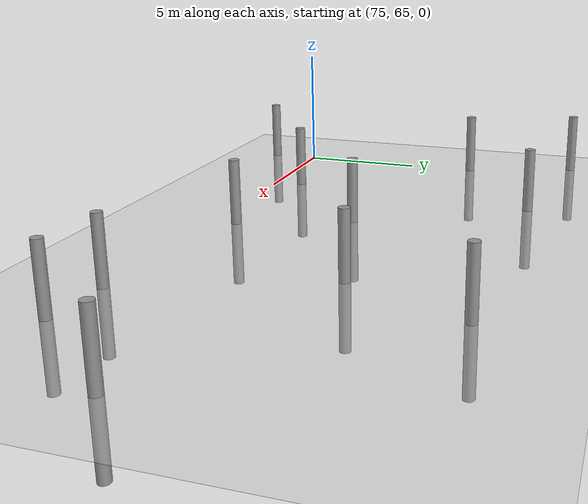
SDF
<sdf version="1.6">
 <world name="default">
  <model name="ground_plane">
   <static>1</static>
   <link name="link">
    <collision name="collision">
     <geometry><plane><normal>0 0 1</normal><size>100 100</size></plane></geometry>
     <surface><friction><ode><mu>100</mu><mu2>50</mu2></ode></friction></surface>
    </collision>
    <visual name="visual">
     <cast_shadows>0</cast_shadows>
     <geometry><plane><normal>0 0 1</normal><size>100 100</size></plane></geometry>
     <material>
      <script><uri>file://media/materials/scripts/gazebo.material</uri><name>Gazebo/Grey</name></script>
     </material>
    </visual>
   </link>
  </model>
  <model name="empty_pillars_2">
   <link name="link">
    <inertial>
     <mass>1</mass>
     <inertia><ixx>0.145833</ixx><ixy>0</ixy><ixz>0</ixz><iyy>0.145833</iyy><iyz>0</iyz><izz>0.125</izz></inertia>
    </inertial>
    <visual name="visual">
     <geometry><cylinder><radius>0.2</radius><length>5</length></cylinder></geometry>
     <material>
      <script><name>Gazebo/Grey</name><uri>file://media/materials/scripts/gazebo.material</uri></script>
      <shader type="vertex"><normal_map>__default__</normal_map></shader>
      <ambient>0.3 0.3 0.3 1</ambient>
      <diffuse>0.7 0.7 0.7 1</diffuse>
      <specular>0.01 0.01 0.01 1</specular>
      <emissive>0 0 0 1</emissive>
     </material>
    </visual>
    <collision name="collision">
     <geometry><cylinder><radius>0.05</radius><length>5</length></cylinder></geometry>
     <surface>
      <friction>
       <ode><mu>1</mu><mu2>1</mu2><fdir1>0 0 0</fdir1><slip1>0</slip1><slip2>0</slip2></ode>
       <torsional>
        <coefficient>1</coefficient>
        <patch_radius>0</patch_radius>
        <surface_radius>0</surface_radius>
        <use_patch_radius>1</use_patch_radius>
        <ode><slip>0</slip></ode>
       </torsional>
      </friction>
      <bounce><restitution_coefficient>0</restitution_coefficient><threshold>1e+06</threshold></bounce>
      <contact>
       <collide_without_contact>0</collide_without_contact>
       <collide_without_contact_bitmask>1</collide_without_contact_bitmask>
       <collide_bitmask>1</collide_bitmask>
       <ode>
        <soft_cfm>0</soft_cfm>
        <soft_erp>0.2</soft_erp>
        <kp>1e+13</kp>
        <kd>1</kd>
        <max_vel>0.01</max_vel>
        <min_depth>0</min_depth>
       </ode>
       <bullet>
        <split_impulse>1</split_impulse>
        <split_impulse_penetration_threshold>-0.01</split_impulse_penetration_threshold>
        <soft_cfm>0</soft_cfm>
        <soft_erp>0.2</soft_erp>
        <kp>1e+13</kp>
        <kd>1</kd>
       </bullet>
      </contact>
     </surface>
    </collision>
   </link>
   <model name="empty_pillar_clone">
    <link name="link">
     <inertial>
      <mass>1</mass>
      <inertia><ixx>0.145833</ixx><ixy>0</ixy><ixz>0</ixz><iyy>0.145833</iyy><iyz>0</iyz><izz>0.125</izz></inertia>
     </inertial>
     <visual name="visual">
      <geometry><cylinder><radius>0.2</radius><length>5</length></cylinder></geometry>
      <material>
       <script><name>Gazebo/Grey</name><uri>file://media/materials/scripts/gazebo.material</uri></script>
       <shader type="vertex"><normal_map>__default__</normal_map></shader>
       <ambient>0.3 0.3 0.3 1</ambient>
       <diffuse>0.7 0.7 0.7 1</diffuse>
       <specular>0.01 0.01 0.01 1</specular>
       <emissive>0 0 0 1</emissive>
      </material>
     </visual>
     <collision name="collision">
      <geometry><cylinder><radius>0.05</radius><length>5</length></cylinder></geometry>
      <surface>
       <friction>
        <ode><mu>1</mu><mu2>1</mu2><fdir1>0 0 0</fdir1><slip1>0</slip1><slip2>0</slip2></ode>
        <torsional>
         <coefficient>1</coefficient>
         <patch_radius>0</patch_radius>
         <surface_radius>0</surface_radius>
         <use_patch_radius>1</use_patch_radius>
         <ode><slip>0</slip></ode>
        </torsional>
       </friction>
       <bounce><restitution_coefficient>0</restitution_coefficient><threshold>1e+06</threshold></bounce>
       <contact>
        <collide_without_contact>0</collide_without_contact>
        <collide_without_contact_bitmask>1</collide_without_contact_bitmask>
        <collide_bitmask>1</collide_bitmask>
        <ode>
         <soft_cfm>0</soft_cfm>
         <soft_erp>0.2</soft_erp>
         <kp>1e+13</kp>
         <kd>1</kd>
         <max_vel>0.01</max_vel>
         <min_depth>0</min_depth>
        </ode>
        <bullet>
         <split_impulse>1</split_impulse>
         <split_impulse_penetration_threshold>-0.01</split_impulse_penetration_threshold>
         <soft_cfm>0</soft_cfm>
         <soft_erp>0.2</soft_erp>
         <kp>1e+13</kp>
         <kd>1</kd>
        </bullet>
       </contact>
      </surface>
     </collision>
    </link>
    <static>0</static>
    <pose>1.47843 -4.49529 0 0 -0 0</pose>
   </model>
   <model name="empty_pillar_clone_0">
    <link name="link">
     <inertial>
      <mass>1</mass>
      <inertia><ixx>0.145833</ixx><ixy>0</ixy><ixz>0</ixz><iyy>0.145833</iyy><iyz>0</iyz><izz>0.125</izz></inertia>
     </inertial>
     <visual name="visual">
      <geometry><cylinder><radius>0.2</radius><length>5</length></cylinder></geometry>
      <material>
       <script><name>Gazebo/Grey</name><uri>file://media/materials/scripts/gazebo.material</uri></script>
       <shader type="vertex"><normal_map>__default__</normal_map></shader>
       <ambient>0.3 0.3 0.3 1</ambient>
       <diffuse>0.7 0.7 0.7 1</diffuse>
       <specular>0.01 0.01 0.01 1</specular>
       <emissive>0 0 0 1</emissive>
      </material>
     </visual>
     <collision name="collision">
      <geometry><cylinder><radius>0.05</radius><length>5</length></cylinder></geometry>
      <surface>
       <friction>
        <ode><mu>1</mu><mu2>1</mu2><fdir1>0 0 0</fdir1><slip1>0</slip1><slip2>0</slip2></ode>
        <torsional>
         <coefficient>1</coefficient>
         <patch_radius>0</patch_radius>
         <surface_radius>0</surface_radius>
         <use_patch_radius>1</use_patch_radius>
         <ode><slip>0</slip></ode>
        </torsional>
       </friction>
       <bounce><restitution_coefficient>0</restitution_coefficient><threshold>1e+06</threshold></bounce>
       <contact>
        <collide_without_contact>0</collide_without_contact>
        <collide_without_contact_bitmask>1</collide_without_contact_bitmask>
        <collide_bitmask>1</collide_bitmask>
        <ode>
         <soft_cfm>0</soft_cfm>
         <soft_erp>0.2</soft_erp>
         <kp>1e+13</kp>
         <kd>1</kd>
         <max_vel>0.01</max_vel>
         <min_depth>0</min_depth>
        </ode>
        <bullet>
         <split_impulse>1</split_impulse>
         <split_impulse_penetration_threshold>-0.01</split_impulse_penetration_threshold>
         <soft_cfm>0</soft_cfm>
         <soft_erp>0.2</soft_erp>
         <kp>1e+13</kp>
         <kd>1</kd>
        </bullet>
       </contact>
      </surface>
     </collision>
    </link>
    <static>0</static>
    <pose>10.3453 -7.35986 0 0 -0 0</pose>
   </model>
   <model name="empty_pillar_clone_2">
    <link name="link">
     <inertial>
      <mass>1</mass>
      <inertia><ixx>0.145833</ixx><ixy>0</ixy><ixz>0</ixz><iyy>0.145833</iyy><iyz>0</iyz><izz>0.125</izz></inertia>
     </inertial>
     <visual name="visual">
      <geometry><cylinder><radius>0.2</radius><length>5</length></cylinder></geometry>
      <material>
       <script><name>Gazebo/Grey</name><uri>file://media/materials/scripts/gazebo.material</uri></script>
       <shader type="vertex"><normal_map>__default__</normal_map></shader>
       <ambient>0.3 0.3 0.3 1</ambient>
       <diffuse>0.7 0.7 0.7 1</diffuse>
       <specular>0.01 0.01 0.01 1</specular>
       <emissive>0 0 0 1</emissive>
      </material>
     </visual>
     <collision name="collision">
      <geometry><cylinder><radius>0.05</radius><length>5</length></cylinder></geometry>
      <surface>
       <friction>
        <ode><mu>1</mu><mu2>1</mu2><fdir1>0 0 0</fdir1><slip1>0</slip1><slip2>0</slip2></ode>
        <torsional>
         <coefficient>1</coefficient>
         <patch_radius>0</patch_radius>
         <surface_radius>0</surface_radius>
         <use_patch_radius>1</use_patch_radius>
         <ode><slip>0</slip></ode>
        </torsional>
       </friction>
       <bounce><restitution_coefficient>0</restitution_coefficient><threshold>1e+06</threshold></bounce>
       <contact>
        <collide_without_contact>0</collide_without_contact>
        <collide_without_contact_bitmask>1</collide_without_contact_bitmask>
        <collide_bitmask>1</collide_bitmask>
        <ode>
         <soft_cfm>0</soft_cfm>
         <soft_erp>0.2</soft_erp>
         <kp>1e+13</kp>
         <kd>1</kd>
         <max_vel>0.01</max_vel>
         <min_depth>0</min_depth>
        </ode>
        <bullet>
         <split_impulse>1</split_impulse>
         <split_impulse_penetration_threshold>-0.01</split_impulse_penetration_threshold>
         <soft_cfm>0</soft_cfm>
         <soft_erp>0.2</soft_erp>
         <kp>1e+13</kp>
         <kd>1</kd>
        </bullet>
       </contact>
      </surface>
     </collision>
    </link>
    <static>0</static>
    <pose>6.92427 -1.06221 0 0 -0 0</pose>
   </model>
   <model name="empty_pillar_clone_3">
    <link name="link">
     <inertial>
      <mass>1</mass>
      <inertia><ixx>0.145833</ixx><ixy>0</ixy><ixz>0</ixz><iyy>0.145833</iyy><iyz>0</iyz><izz>0.125</izz></inertia>
     </inertial>
     <visual name="visual">
      <geometry><cylinder><radius>0.2</radius><length>5</length></cylinder></geometry>
      <material>
       <script><name>Gazebo/Grey</name><uri>file://media/materials/scripts/gazebo.material</uri></script>
       <shader type="vertex"><normal_map>__default__</normal_map></shader>
       <ambient>0.3 0.3 0.3 1</ambient>
       <diffuse>0.7 0.7 0.7 1</diffuse>
       <specular>0.01 0.01 0.01 1</specular>
       <emissive>0 0 0 1</emissive>
      </material>
     </visual>
     <collision name="collision">
      <geometry><cylinder><radius>0.05</radius><length>5</length></cylinder></geometry>
      <surface>
       <friction>
        <ode><mu>1</mu><mu2>1</mu2><fdir1>0 0 0</fdir1><slip1>0</slip1><slip2>0</slip2></ode>
        <torsional>
         <coefficient>1</coefficient>
         <patch_radius>0</patch_radius>
         <surface_radius>0</surface_radius>
         <use_patch_radius>1</use_patch_radius>
         <ode><slip>0</slip></ode>
        </torsional>
       </friction>
       <bounce><restitution_coefficient>0</restitution_coefficient><threshold>1e+06</threshold></bounce>
       <contact>
        <collide_without_contact>0</collide_without_contact>
        <collide_without_contact_bitmask>1</collide_without_contact_bitmask>
        <collide_bitmask>1</collide_bitmask>
        <ode>
         <soft_cfm>0</soft_cfm>
         <soft_erp>0.2</soft_erp>
         <kp>1e+13</kp>
         <kd>1</kd>
         <max_vel>0.01</max_vel>
         <min_depth>0</min_depth>
        </ode>
        <bullet>
         <split_impulse>1</split_impulse>
         <split_impulse_penetration_threshold>-0.01</split_impulse_penetration_threshold>
         <soft_cfm>0</soft_cfm>
         <soft_erp>0.2</soft_erp>
         <kp>1e+13</kp>
         <kd>1</kd>
        </bullet>
       </contact>
      </surface>
     </collision>
    </link>
    <static>0</static>
    <pose>5.99316 -11.2211 0 0 -0 0</pose>
   </model>
   <model name="empty_pillar_clone_33">
    <link name="link">
     <inertial>
      <mass>1</mass>
      <inertia><ixx>0.145833</ixx><ixy>0</ixy><ixz>0</ixz><iyy>0.145833</iyy><iyz>0</iyz><izz>0.125</izz></inertia>
     </inertial>
     <visual name="visual">
      <geometry><cylinder><radius>0.2</radius><length>5</length></cylinder></geometry>
      <material>
       <script><name>Gazebo/Grey</name><uri>file://media/materials/scripts/gazebo.material</uri></script>
       <shader type="vertex"><normal_map>__default__</normal_map></shader>
       <ambient>0.3 0.3 0.3 1</ambient>
       <diffuse>0.7 0.7 0.7 1</diffuse>
       <specular>0.01 0.01 0.01 1</specular>
       <emissive>0 0 0 1</emissive>
      </material>
     </visual>
     <collision name="collision">
      <geometry><cylinder><radius>0.05</radius><length>5</length></cylinder></geometry>
      <surface>
       <friction>
        <ode><mu>1</mu><mu2>1</mu2><fdir1>0 0 0</fdir1><slip1>0</slip1><slip2>0</slip2></ode>
        <torsional>
         <coefficient>1</coefficient>
         <patch_radius>0</patch_radius>
         <surface_radius>0</surface_radius>
         <use_patch_radius>1</use_patch_radius>
         <ode><slip>0</slip></ode>
        </torsional>
       </friction>
       <bounce><restitution_coefficient>0</restitution_coefficient><threshold>1e+06</threshold></bounce>
       <contact>
        <collide_without_contact>0</collide_without_contact>
        <collide_without_contact_bitmask>1</collide_without_contact_bitmask>
        <collide_bitmask>1</collide_bitmask>
        <ode>
         <soft_cfm>0</soft_cfm>
         <soft_erp>0.2</soft_erp>
         <kp>1e+13</kp>
         <kd>1</kd>
         <max_vel>0.01</max_vel>
         <min_depth>0</min_depth>
        </ode>
        <bullet>
         <split_impulse>1</split_impulse>
         <split_impulse_penetration_threshold>-0.01</split_impulse_penetration_threshold>
         <soft_cfm>0</soft_cfm>
         <soft_erp>0.2</soft_erp>
         <kp>1e+13</kp>
         <kd>1</kd>
        </bullet>
       </contact>
      </surface>
     </collision>
    </link>
    <static>0</static>
    <pose>21.5621 -13.0704 0 0 -0 0</pose>
   </model>
   <model name="empty_pillar_clone_4">
    <link name="link">
     <inertial>
      <mass>1</mass>
      <inertia><ixx>0.145833</ixx><ixy>0</ixy><ixz>0</ixz><iyy>0.145833</iyy><iyz>0</iyz><izz>0.125</izz></inertia>
     </inertial>
     <visual name="visual">
      <geometry><cylinder><radius>0.2</radius><length>5</length></cylinder></geometry>
      <material>
       <script><name>Gazebo/Grey</name><uri>file://media/materials/scripts/gazebo.material</uri></script>
       <shader type="vertex"><normal_map>__default__</normal_map></shader>
       <ambient>0.3 0.3 0.3 1</ambient>
       <diffuse>0.7 0.7 0.7 1</diffuse>
       <specular>0.01 0.01 0.01 1</specular>
       <emissive>0 0 0 1</emissive>
      </material>
     </visual>
     <collision name="collision">
      <geometry><cylinder><radius>0.05</radius><length>5</length></cylinder></geometry>
      <surface>
       <friction>
        <ode><mu>1</mu><mu2>1</mu2><fdir1>0 0 0</fdir1><slip1>0</slip1><slip2>0</slip2></ode>
        <torsional>
         <coefficient>1</coefficient>
         <patch_radius>0</patch_radius>
         <surface_radius>0</surface_radius>
         <use_patch_radius>1</use_patch_radius>
         <ode><slip>0</slip></ode>
        </torsional>
       </friction>
       <bounce><restitution_coefficient>0</restitution_coefficient><threshold>1e+06</threshold></bounce>
       <contact>
        <collide_without_contact>0</collide_without_contact>
        <collide_without_contact_bitmask>1</collide_without_contact_bitmask>
        <collide_bitmask>1</collide_bitmask>
        <ode>
         <soft_cfm>0</soft_cfm>
         <soft_erp>0.2</soft_erp>
         <kp>1e+13</kp>
         <kd>1</kd>
         <max_vel>0.01</max_vel>
         <min_depth>0</min_depth>
        </ode>
        <bullet>
         <split_impulse>1</split_impulse>
         <split_impulse_penetration_threshold>-0.01</split_impulse_penetration_threshold>
         <soft_cfm>0</soft_cfm>
         <soft_erp>0.2</soft_erp>
         <kp>1e+13</kp>
         <kd>1</kd>
        </bullet>
       </contact>
      </surface>
     </collision>
    </link>
    <static>0</static>
    <pose>1.48428 -14.2998 0 0 -0 0</pose>
   </model>
   <model name="empty_pillar_clone_48">
    <link name="link">
     <inertial>
      <mass>1</mass>
      <inertia><ixx>0.145833</ixx><ixy>0</ixy><ixz>0</ixz><iyy>0.145833</iyy><iyz>0</iyz><izz>0.125</izz></inertia>
     </inertial>
     <visual name="visual">
      <geometry><cylinder><radius>0.2</radius><length>5</length></cylinder></geometry>
      <material>
       <script><name>Gazebo/Grey</name><uri>file://media/materials/scripts/gazebo.material</uri></script>
       <shader type="vertex"><normal_map>__default__</normal_map></shader>
       <ambient>0.3 0.3 0.3 1</ambient>
       <diffuse>0.7 0.7 0.7 1</diffuse>
       <specular>0.01 0.01 0.01 1</specular>
       <emissive>0 0 0 1</emissive>
      </material>
     </visual>
     <collision name="collision">
      <geometry><cylinder><radius>0.05</radius><length>5</length></cylinder></geometry>
      <surface>
       <friction>
        <ode><mu>1</mu><mu2>1</mu2><fdir1>0 0 0</fdir1><slip1>0</slip1><slip2>0</slip2></ode>
        <torsional>
         <coefficient>1</coefficient>
         <patch_radius>0</patch_radius>
         <surface_radius>0</surface_radius>
         <use_patch_radius>1</use_patch_radius>
         <ode><slip>0</slip></ode>
        </torsional>
       </friction>
       <bounce><restitution_coefficient>0</restitution_coefficient><threshold>1e+06</threshold></bounce>
       <contact>
        <collide_without_contact>0</collide_without_contact>
        <collide_without_contact_bitmask>1</collide_without_contact_bitmask>
        <collide_bitmask>1</collide_bitmask>
        <ode>
         <soft_cfm>0</soft_cfm>
         <soft_erp>0.2</soft_erp>
         <kp>1e+13</kp>
         <kd>1</kd>
         <max_vel>0.01</max_vel>
         <min_depth>0</min_depth>
        </ode>
        <bullet>
         <split_impulse>1</split_impulse>
         <split_impulse_penetration_threshold>-0.01</split_impulse_penetration_threshold>
         <soft_cfm>0</soft_cfm>
         <soft_erp>0.2</soft_erp>
         <kp>1e+13</kp>
         <kd>1</kd>
        </bullet>
       </contact>
      </surface>
     </collision>
    </link>
    <static>0</static>
    <pose>16.2633 -5.65052 0 0 -0 0</pose>
   </model>
   <model name="empty_pillar_clone_51">
    <link name="link">
     <inertial>
      <mass>1</mass>
      <inertia><ixx>0.145833</ixx><ixy>0</ixy><ixz>0</ixz><iyy>0.145833</iyy><iyz>0</iyz><izz>0.125</izz></inertia>
     </inertial>
     <visual name="visual">
      <geometry><cylinder><radius>0.2</radius><length>5</length></cylinder></geometry>
      <material>
       <script><name>Gazebo/Grey</name><uri>file://media/materials/scripts/gazebo.material</uri></script>
       <shader type="vertex"><normal_map>__default__</normal_map></shader>
       <ambient>0.3 0.3 0.3 1</ambient>
       <diffuse>0.7 0.7 0.7 1</diffuse>
       <specular>0.01 0.01 0.01 1</specular>
       <emissive>0 0 0 1</emissive>
      </material>
     </visual>
     <collision name="collision">
      <geometry><cylinder><radius>0.05</radius><length>5</length></cylinder></geometry>
      <surface>
       <friction>
        <ode><mu>1</mu><mu2>1</mu2><fdir1>0 0 0</fdir1><slip1>0</slip1><slip2>0</slip2></ode>
        <torsional>
         <coefficient>1</coefficient>
         <patch_radius>0</patch_radius>
         <surface_radius>0</surface_radius>
         <use_patch_radius>1</use_patch_radius>
         <ode><slip>0</slip></ode>
        </torsional>
       </friction>
       <bounce><restitution_coefficient>0</restitution_coefficient><threshold>1e+06</threshold></bounce>
       <contact>
        <collide_without_contact>0</collide_without_contact>
        <collide_without_contact_bitmask>1</collide_without_contact_bitmask>
        <collide_bitmask>1</collide_bitmask>
        <ode>
         <soft_cfm>0</soft_cfm>
         <soft_erp>0.2</soft_erp>
         <kp>1e+13</kp>
         <kd>1</kd>
         <max_vel>0.01</max_vel>
         <min_depth>0</min_depth>
        </ode>
        <bullet>
         <split_impulse>1</split_impulse>
         <split_impulse_penetration_threshold>-0.01</split_impulse_penetration_threshold>
         <soft_cfm>0</soft_cfm>
         <soft_erp>0.2</soft_erp>
         <kp>1e+13</kp>
         <kd>1</kd>
        </bullet>
       </contact>
      </surface>
     </collision>
    </link>
    <static>0</static>
    <pose>11.8943 -11.5792 0 0 -0 0</pose>
   </model>
   <model name="empty_pillar_clone_6">
    <link name="link">
     <inertial>
      <mass>1</mass>
      <inertia><ixx>0.145833</ixx><ixy>0</ixy><ixz>0</ixz><iyy>0.145833</iyy><iyz>0</iyz><izz>0.125</izz></inertia>
     </inertial>
     <visual name="visual">
      <geometry><cylinder><radius>0.2</radius><length>5</length></cylinder></geometry>
      <material>
       <script><name>Gazebo/Grey</name><uri>file://media/materials/scripts/gazebo.material</uri></script>
       <shader type="vertex"><normal_map>__default__</normal_map></shader>
       <ambient>0.3 0.3 0.3 1</ambient>
       <diffuse>0.7 0.7 0.7 1</diffuse>
       <specular>0.01 0.01 0.01 1</specular>
       <emissive>0 0 0 1</emissive>
      </material>
     </visual>
     <collision name="collision">
      <geometry><cylinder><radius>0.05</radius><length>5</length></cylinder></geometry>
      <surface>
       <friction>
        <ode><mu>1</mu><mu2>1</mu2><fdir1>0 0 0</fdir1><slip1>0</slip1><slip2>0</slip2></ode>
        <torsional>
         <coefficient>1</coefficient>
         <patch_radius>0</patch_radius>
         <surface_radius>0</surface_radius>
         <use_patch_radius>1</use_patch_radius>
         <ode><slip>0</slip></ode>
        </torsional>
       </friction>
       <bounce><restitution_coefficient>0</restitution_coefficient><threshold>1e+06</threshold></bounce>
       <contact>
        <collide_without_contact>0</collide_without_contact>
        <collide_without_contact_bitmask>1</collide_without_contact_bitmask>
        <collide_bitmask>1</collide_bitmask>
        <ode>
         <soft_cfm>0</soft_cfm>
         <soft_erp>0.2</soft_erp>
         <kp>1e+13</kp>
         <kd>1</kd>
         <max_vel>0.01</max_vel>
         <min_depth>0</min_depth>
        </ode>
        <bullet>
         <split_impulse>1</split_impulse>
         <split_impulse_penetration_threshold>-0.01</split_impulse_penetration_threshold>
         <soft_cfm>0</soft_cfm>
         <soft_erp>0.2</soft_erp>
         <kp>1e+13</kp>
         <kd>1</kd>
        </bullet>
       </contact>
      </surface>
     </collision>
    </link>
    <static>0</static>
    <pose>24.9156 -9.11394 0 0 -0 0</pose>
   </model>
   <model name="empty_pillar_clone_8">
    <link name="link">
     <inertial>
      <mass>1</mass>
      <inertia><ixx>0.145833</ixx><ixy>0</ixy><ixz>0</ixz><iyy>0.145833</iyy><iyz>0</iyz><izz>0.125</izz></inertia>
     </inertial>
     <visual name="visual">
      <geometry><cylinder><radius>0.2</radius><length>5</length></cylinder></geometry>
      <material>
       <script><name>Gazebo/Grey</name><uri>file://media/materials/scripts/gazebo.material</uri></script>
       <shader type="vertex"><normal_map>__default__</normal_map></shader>
       <ambient>0.3 0.3 0.3 1</ambient>
       <diffuse>0.7 0.7 0.7 1</diffuse>
       <specular>0.01 0.01 0.01 1</specular>
       <emissive>0 0 0 1</emissive>
      </material>
     </visual>
     <collision name="collision">
      <geometry><cylinder><radius>0.05</radius><length>5</length></cylinder></geometry>
      <surface>
       <friction>
        <ode><mu>1</mu><mu2>1</mu2><fdir1>0 0 0</fdir1><slip1>0</slip1><slip2>0</slip2></ode>
        <torsional>
         <coefficient>1</coefficient>
         <patch_radius>0</patch_radius>
         <surface_radius>0</surface_radius>
         <use_patch_radius>1</use_patch_radius>
         <ode><slip>0</slip></ode>
        </torsional>
       </friction>
       <bounce><restitution_coefficient>0</restitution_coefficient><threshold>1e+06</threshold></bounce>
       <contact>
        <collide_without_contact>0</collide_without_contact>
        <collide_without_contact_bitmask>1</collide_without_contact_bitmask>
        <collide_bitmask>1</collide_bitmask>
        <ode>
         <soft_cfm>0</soft_cfm>
         <soft_erp>0.2</soft_erp>
         <kp>1e+13</kp>
         <kd>1</kd>
         <max_vel>0.01</max_vel>
         <min_depth>0</min_depth>
        </ode>
        <bullet>
         <split_impulse>1</split_impulse>
         <split_impulse_penetration_threshold>-0.01</split_impulse_penetration_threshold>
         <soft_cfm>0</soft_cfm>
         <soft_erp>0.2</soft_erp>
         <kp>1e+13</kp>
         <kd>1</kd>
        </bullet>
       </contact>
      </surface>
     </collision>
    </link>
    <static>0</static>
    <pose>18.9854 -12.8403 0 0 -0 0</pose>
   </model>
   <model name="empty_pillar_clone_9">
    <link name="link">
     <inertial>
      <mass>1</mass>
      <inertia><ixx>0.145833</ixx><ixy>0</ixy><ixz>0</ixz><iyy>0.145833</iyy><iyz>0</iyz><izz>0.125</izz></inertia>
     </inertial>
     <visual name="visual">
      <geometry><cylinder><radius>0.2</radius><length>5</length></cylinder></geometry>
      <material>
       <script><name>Gazebo/Grey</name><uri>file://media/materials/scripts/gazebo.material</uri></script>
       <shader type="vertex"><normal_map>__default__</normal_map></shader>
       <ambient>0.3 0.3 0.3 1</ambient>
       <diffuse>0.7 0.7 0.7 1</diffuse>
       <specular>0.01 0.01 0.01 1</specular>
       <emissive>0 0 0 1</emissive>
      </material>
     </visual>
     <collision name="collision">
      <geometry><cylinder><radius>0.05</radius><length>5</length></cylinder></geometry>
      <surface>
       <friction>
        <ode><mu>1</mu><mu2>1</mu2><fdir1>0 0 0</fdir1><slip1>0</slip1><slip2>0</slip2></ode>
        <torsional>
         <coefficient>1</coefficient>
         <patch_radius>0</patch_radius>
         <surface_radius>0</surface_radius>
         <use_patch_radius>1</use_patch_radius>
         <ode><slip>0</slip></ode>
        </torsional>
       </friction>
       <bounce><restitution_coefficient>0</restitution_coefficient><threshold>1e+06</threshold></bounce>
       <contact>
        <collide_without_contact>0</collide_without_contact>
        <collide_without_contact_bitmask>1</collide_without_contact_bitmask>
        <collide_bitmask>1</collide_bitmask>
        <ode>
         <soft_cfm>0</soft_cfm>
         <soft_erp>0.2</soft_erp>
         <kp>1e+13</kp>
         <kd>1</kd>
         <max_vel>0.01</max_vel>
         <min_depth>0</min_depth>
        </ode>
        <bullet>
         <split_impulse>1</split_impulse>
         <split_impulse_penetration_threshold>-0.01</split_impulse_penetration_threshold>
         <soft_cfm>0</soft_cfm>
         <soft_erp>0.2</soft_erp>
         <kp>1e+13</kp>
         <kd>1</kd>
        </bullet>
       </contact>
      </surface>
     </collision>
    </link>
    <static>0</static>
    <pose>18.1111 -1.13899 0 0 -0 0</pose>
   </model>
   <static>0</static>
   <pose>73.3006 77.2503 0 0 -0 0</pose>
  </model>
 </world>
</sdf>
